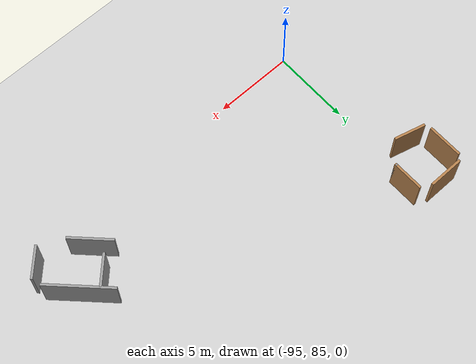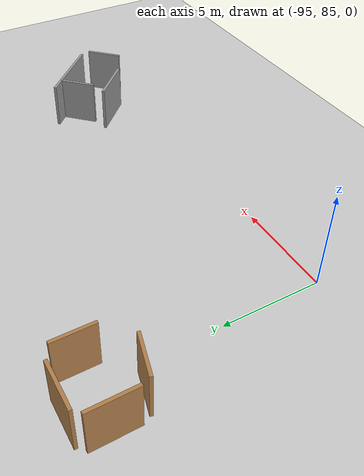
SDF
<sdf version="1.6">
 <world name="default">
  <model name="ground_plane">
   <pose>50 50 0 0 -0 0</pose>
   <static>1</static>
   <link name="link">
    <collision name="collision">
     <geometry><plane><normal>0 0 1</normal><size>100 100</size></plane></geometry>
     <surface><friction><ode><mu>100</mu><mu2>50</mu2></ode></friction></surface>
    </collision>
    <visual name="visual">
     <cast_shadows>0</cast_shadows>
     <geometry><plane><normal>0 0 1</normal><size>100 100</size></plane></geometry>
     <material>
      <script><uri>file://media/materials/scripts/gazebo.material</uri><name>Gazebo/Grey</name></script>
     </material>
    </visual>
   </link>
  </model>
  <model name="hex_maze">
   <link name="link_1">
    <inertial>
     <mass>1</mass>
     <inertia>
      <ixx>0.166667</ixx>
      <ixy>0</ixy>
      <ixz>0</ixz>
      <iyy>0.166667</iyy>
      <iyz>0</iyz>
      <izz>0.166667</izz>
     </inertia>
    </inertial>
    <pose>2e-05 3e-06 0 0 -0 0</pose>
    <visual name="visual">
     <geometry><mesh><uri>model://hex_maze/new_maze4.stl</uri><scale>1 1 1</scale></mesh></geometry>
     <material>
      <lighting>1</lighting>
      <script><uri>file://media/materials/scripts/gazebo.material</uri><name>__default__</name></script>
     </material>
    </visual>
    <collision name="collision">
     <geometry><mesh><uri>model://hex_maze/new_maze4.stl</uri><scale>1 1 1</scale></mesh></geometry>
     <surface>
      <friction>
       <ode><mu>1</mu><mu2>1</mu2><fdir1>0 0 0</fdir1><slip1>0</slip1><slip2>0</slip2></ode>
       <torsional>
        <coefficient>1</coefficient>
        <patch_radius>0</patch_radius>
        <surface_radius>0</surface_radius>
        <use_patch_radius>1</use_patch_radius>
        <ode><slip>0</slip></ode>
       </torsional>
      </friction>
      <bounce><restitution_coefficient>0</restitution_coefficient><threshold>1e+06</threshold></bounce>
      <contact>
       <collide_without_contact>0</collide_without_contact>
       <collide_without_contact_bitmask>1</collide_without_contact_bitmask>
       <collide_bitmask>1</collide_bitmask>
       <ode>
        <soft_cfm>0</soft_cfm>
        <soft_erp>0.2</soft_erp>
        <kp>1e+13</kp>
        <kd>1</kd>
        <max_vel>0.01</max_vel>
        <min_depth>0</min_depth>
       </ode>
       <bullet>
        <split_impulse>1</split_impulse>
        <split_impulse_penetration_threshold>-0.01</split_impulse_penetration_threshold>
        <soft_cfm>0</soft_cfm>
        <soft_erp>0.2</soft_erp>
        <kp>1e+13</kp>
        <kd>1</kd>
       </bullet>
      </contact>
     </surface>
    </collision>
   </link>
   <static>1</static>
   <pose>-80.9774 81.1212 0 0 -0 0</pose>
  </model>
  <model name="obs1">
   <pose>-95.7108 95.8053 0 0 -0 0</pose>
   <link name="Wall_10">
    <collision name="Wall_10_Collision">
     <geometry><box><size>2 0.15 2.5</size></box></geometry>
     <pose>0 0 1.25 0 -0 0</pose>
    </collision>
    <visual name="Wall_10_Visual">
     <pose>0 0 1.25 0 -0 0</pose>
     <geometry><box><size>2 0.15 2.5</size></box></geometry>
     <material>
      <script><uri>file://media/materials/scripts/gazebo.material</uri><name>Gazebo/Wood</name></script>
      <ambient>1 1 1 1</ambient>
     </material>
    </visual>
    <pose>-0.505188 -1.46687 0 0 0 -0.261799</pose>
   </link>
   <link name="Wall_2">
    <collision name="Wall_2_Collision">
     <geometry><box><size>2.25 0.15 2.5</size></box></geometry>
     <pose>0 0 1.25 0 -0 0</pose>
    </collision>
    <visual name="Wall_2_Visual">
     <pose>0 0 1.25 0 -0 0</pose>
     <geometry><box><size>2.25 0.15 2.5</size></box></geometry>
     <material>
      <script><uri>file://media/materials/scripts/gazebo.material</uri><name>Gazebo/Wood</name></script>
      <ambient>1 1 1 1</ambient>
     </material>
    </visual>
    <pose>-1.58039 0.313508 0 0 0 -1.5708</pose>
   </link>
   <link name="Wall_5">
    <collision name="Wall_5_Collision">
     <geometry><box><size>2.25 0.15 2.5</size></box></geometry>
     <pose>0 0 1.25 0 -0 0</pose>
    </collision>
    <visual name="Wall_5_Visual">
     <pose>0 0 1.25 0 -0 0</pose>
     <geometry><box><size>2.25 0.15 2.5</size></box></geometry>
     <material>
      <script><uri>file://media/materials/scripts/gazebo.material</uri><name>Gazebo/Wood</name></script>
      <ambient>1 1 1 1</ambient>
     </material>
    </visual>
    <pose>-0.185262 1.72313 0 0 -0 0</pose>
   </link>
   <link name="Wall_7">
    <collision name="Wall_7_Collision">
     <geometry><box><size>2 0.15 2.5</size></box></geometry>
     <pose>0 0 1.25 0 -0 0</pose>
    </collision>
    <visual name="Wall_7_Visual">
     <pose>0 0 1.25 0 -0 0</pose>
     <geometry><box><size>2 0.15 2.5</size></box></geometry>
     <material>
      <script><uri>file://media/materials/scripts/gazebo.material</uri><name>Gazebo/Wood</name></script>
      <ambient>1 1 1 1</ambient>
     </material>
    </visual>
    <pose>1.58039 0.398833 0 0 0 -1.5708</pose>
   </link>
   <link name="Wall_8">
    <collision name="Wall_8_Collision">
     <geometry><box><size>0.15 0.15 2.5</size></box></geometry>
     <pose>0 0 1.25 0 -0 0</pose>
    </collision>
    <visual name="Wall_8_Visual">
     <pose>0 0 1.25 0 -0 0</pose>
     <geometry><box><size>0.15 0.15 2.5</size></box></geometry>
     <material>
      <script><uri>file://media/materials/scripts/gazebo.material</uri><name>Gazebo/Grey</name></script>
      <ambient>1 1 1 1</ambient>
     </material>
    </visual>
    <pose>1.58039 -0.526167 0 0 -0 0</pose>
   </link>
   <static>1</static>
  </model>
  <model name="obs2">
   <pose>-76.8545 87.7629 0 0 -0 0</pose>
   <link name="Wall_0">
    <collision name="Wall_0_Collision">
     <geometry><box><size>2 0.15 2.5</size></box></geometry>
     <pose>0 0 1.25 0 -0 0</pose>
    </collision>
    <visual name="Wall_0_Visual">
     <pose>0 0 1.25 0 -0 0</pose>
     <geometry><box><size>2 0.15 2.5</size></box></geometry>
     <material>
      <script><uri>file://media/materials/scripts/gazebo.material</uri><name>Gazebo/Grey</name></script>
      <ambient>1 1 1 1</ambient>
     </material>
    </visual>
    <pose>-0.796332 1.10862 0 0 -0 0.785398</pose>
   </link>
   <link name="Wall_2">
    <collision name="Wall_2_Collision">
     <geometry><box><size>4.25 0.15 2.5</size></box></geometry>
     <pose>0 0 1.25 0 -0 0</pose>
    </collision>
    <visual name="Wall_2_Visual">
     <pose>0 0 1.25 0 -0 0</pose>
     <geometry><box><size>4.25 0.15 2.5</size></box></geometry>
     <material>
      <script><uri>file://media/materials/scripts/gazebo.material</uri><name>Gazebo/Grey</name></script>
      <ambient>1 1 1 1</ambient>
     </material>
    </visual>
    <pose>0.773928 0.982661 0 0 0 -0.785398</pose>
   </link>
   <link name="Wall_4">
    <collision name="Wall_4_Collision">
     <geometry><box><size>2.75 0.15 2.5</size></box></geometry>
     <pose>0 0 1.25 0 -0 0</pose>
    </collision>
    <visual name="Wall_4_Visual">
     <pose>0 0 1.25 0 -0 0</pose>
     <geometry><box><size>2.75 0.15 2.5</size></box></geometry>
     <material>
      <script><uri>file://media/materials/scripts/gazebo.material</uri><name>Gazebo/Grey</name></script>
      <ambient>1 1 1 1</ambient>
     </material>
    </visual>
    <pose>-1.45556 -0.740711 0 0 0 -0.785398</pose>
   </link>
   <link name="Wall_6">
    <collision name="Wall_6_Collision">
     <geometry><box><size>2 0.15 2.5</size></box></geometry>
     <pose>0 0 1.25 0 -0 0</pose>
    </collision>
    <visual name="Wall_6_Visual">
     <pose>0 0 1.25 0 -0 0</pose>
     <geometry><box><size>2 0.15 2.5</size></box></geometry>
     <material>
      <script><uri>file://media/materials/scripts/gazebo.material</uri><name>Gazebo/Grey</name></script>
      <ambient>1 1 1 1</ambient>
     </material>
    </visual>
    <pose>1.72073 -1.77816 0 0 -0 0.785398</pose>
   </link>
   <static>1</static>
  </model>
 </world>
</sdf>
